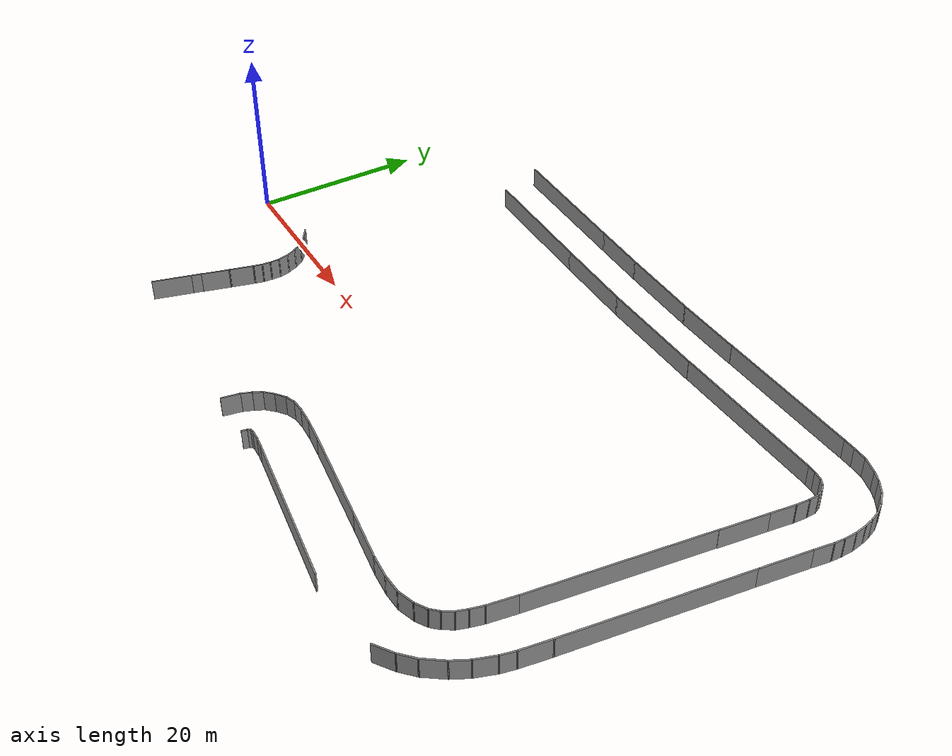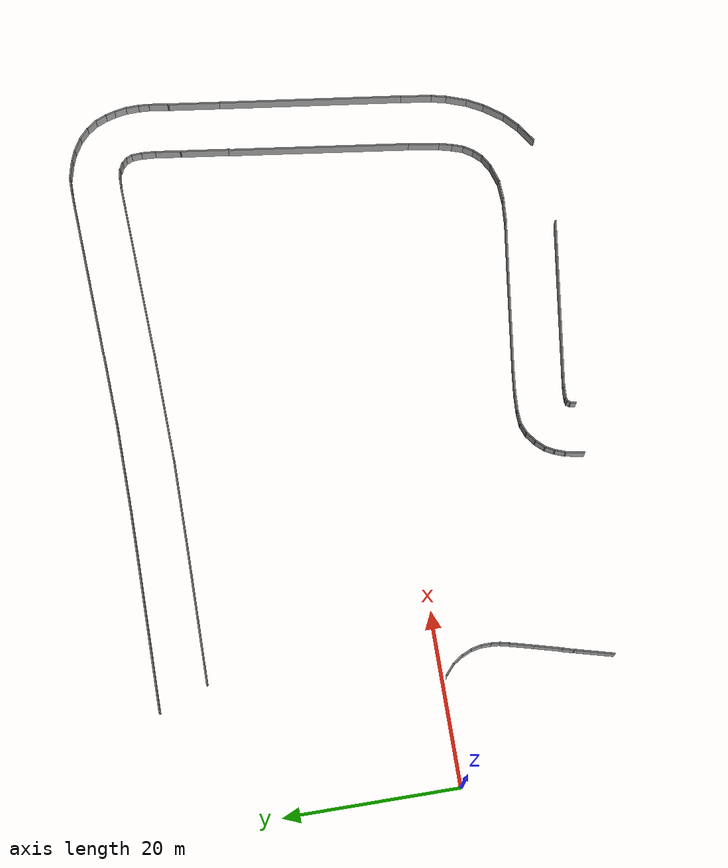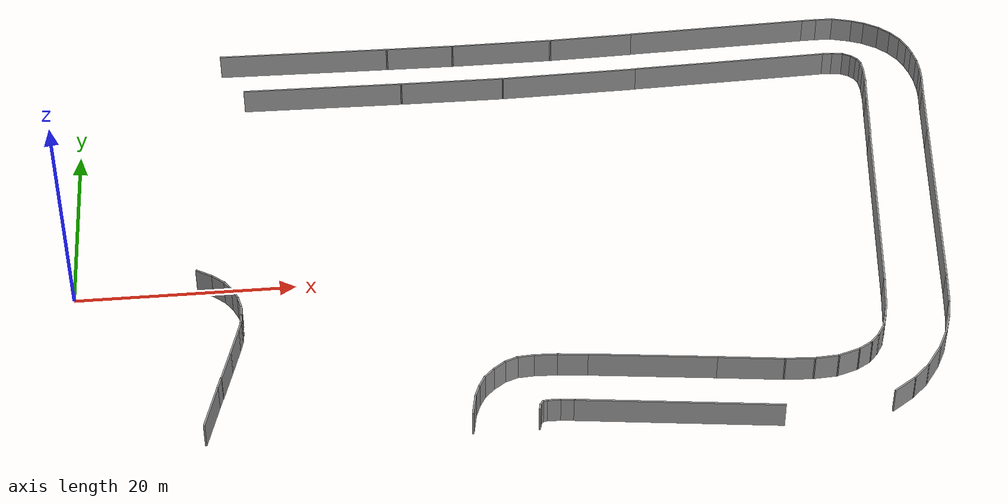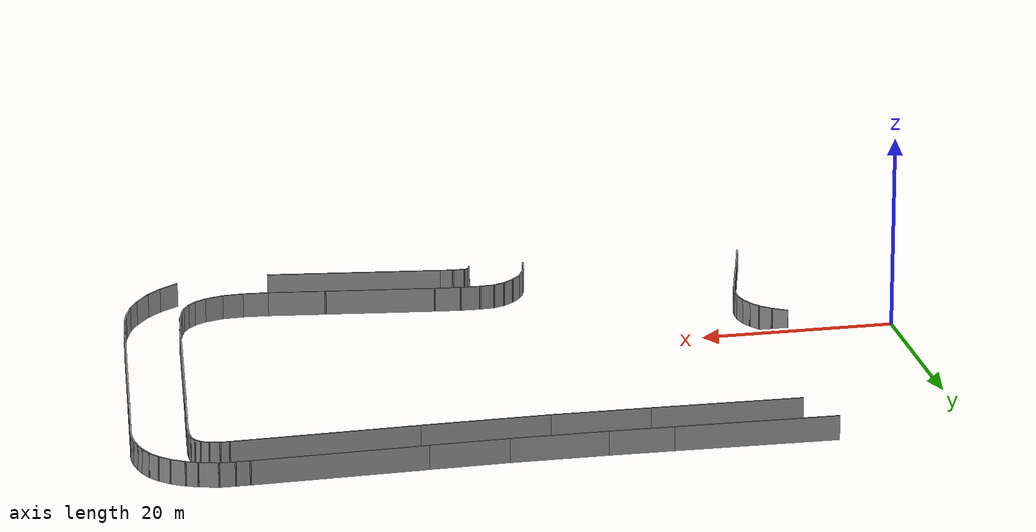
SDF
<sdf version="1.6">
 <model name="pista_l">
  <pose>-4.26084 -21.2973 0 0 -0 0</pose>
  <link name="Wall_10">
   <collision name="Wall_10_Collision">
    <geometry><box><size>17.7168 0.15 2.5</size></box></geometry>
    <pose>0 0 1.25 0 -0 0</pose>
   </collision>
   <visual name="Wall_10_Visual">
    <pose>0 0 1.25 0 -0 0</pose>
    <geometry><box><size>17.7168 0.15 2.5</size></box></geometry>
    <material>
     <script><uri>file://media/materials/scripts/gazebo.material</uri><name>Gazebo/Grey</name></script>
     <ambient>1 1 1 1</ambient>
    </material>
    <meta><layer>0</layer></meta>
   </visual>
   <pose>67.591 53.054 0 0 -0 0.034834</pose>
  </link>
  <link name="Wall_11">
   <collision name="Wall_11_Collision">
    <geometry><box><size>1.58641 0.15 2.5</size></box></geometry>
    <pose>0 0 1.25 0 -0 0</pose>
   </collision>
   <visual name="Wall_11_Visual">
    <pose>0 0 1.25 0 -0 0</pose>
    <geometry><box><size>1.58641 0.15 2.5</size></box></geometry>
    <material>
     <script><uri>file://media/materials/scripts/gazebo.material</uri><name>Gazebo/Grey</name></script>
     <ambient>1 1 1 1</ambient>
    </material>
    <meta><layer>0</layer></meta>
   </visual>
   <pose>77.0873 53.3732 0 0 -0 0.018516</pose>
  </link>
  <link name="Wall_12">
   <collision name="Wall_12_Collision">
    <geometry><box><size>1.77283 0.15 2.5</size></box></geometry>
    <pose>0 0 1.25 0 -0 0</pose>
   </collision>
   <visual name="Wall_12_Visual">
    <pose>0 0 1.25 0 -0 0</pose>
    <geometry><box><size>1.77283 0.15 2.5</size></box></geometry>
    <material>
     <script><uri>file://media/materials/scripts/gazebo.material</uri><name>Gazebo/Grey</name></script>
     <ambient>1 1 1 1</ambient>
    </material>
    <meta><layer>0</layer></meta>
   </visual>
   <pose>78.6168 53.3732 0 0 0 -0.016392</pose>
  </link>
  <link name="Wall_13">
   <collision name="Wall_13_Collision">
    <geometry><box><size>2.13773 0.15 2.5</size></box></geometry>
    <pose>0 0 1.25 0 -0 0</pose>
   </collision>
   <visual name="Wall_13_Visual">
    <pose>0 0 1.25 0 -0 0</pose>
    <geometry><box><size>2.13773 0.15 2.5</size></box></geometry>
    <material>
     <script><uri>file://media/materials/scripts/gazebo.material</uri><name>Gazebo/Grey</name></script>
     <ambient>1 1 1 1</ambient>
    </material>
    <meta><layer>0</layer></meta>
   </visual>
   <pose>80.3857 53.0939 0 0 0 -0.270947</pose>
  </link>
  <link name="Wall_14">
   <collision name="Wall_14_Collision">
    <geometry><box><size>1.38998 0.15 2.5</size></box></geometry>
    <pose>0 0 1.25 0 -0 0</pose>
   </collision>
   <visual name="Wall_14_Visual">
    <pose>0 0 1.25 0 -0 0</pose>
    <geometry><box><size>1.38998 0.15 2.5</size></box></geometry>
    <material>
     <script><uri>file://media/materials/scripts/gazebo.material</uri><name>Gazebo/Grey</name></script>
     <ambient>1 1 1 1</ambient>
    </material>
    <meta><layer>0</layer></meta>
   </visual>
   <pose>81.9152 52.5885 0 0 0 -0.396441</pose>
  </link>
  <link name="Wall_15">
   <collision name="Wall_15_Collision">
    <geometry><box><size>1.72907 0.15 2.5</size></box></geometry>
    <pose>0 0 1.25 0 -0 0</pose>
   </collision>
   <visual name="Wall_15_Visual">
    <pose>0 0 1.25 0 -0 0</pose>
    <geometry><box><size>1.72907 0.15 2.5</size></box></geometry>
    <material>
     <script><uri>file://media/materials/scripts/gazebo.material</uri><name>Gazebo/Grey</name></script>
     <ambient>1 1 1 1</ambient>
    </material>
    <meta><layer>0</layer></meta>
   </visual>
   <pose>83.1521 51.9235 0 0 0 -0.569313</pose>
  </link>
  <link name="Wall_16">
   <collision name="Wall_16_Collision">
    <geometry><box><size>1.54188 0.15 2.5</size></box></geometry>
    <pose>0 0 1.25 0 -0 0</pose>
   </collision>
   <visual name="Wall_16_Visual">
    <pose>0 0 1.25 0 -0 0</pose>
    <geometry><box><size>1.54188 0.15 2.5</size></box></geometry>
    <material>
     <script><uri>file://media/materials/scripts/gazebo.material</uri><name>Gazebo/Grey</name></script>
     <ambient>1 1 1 1</ambient>
    </material>
    <meta><layer>0</layer></meta>
   </visual>
   <pose>84.3092 51.0058 0 0 0 -0.785398</pose>
  </link>
  <link name="Wall_17">
   <collision name="Wall_17_Collision">
    <geometry><box><size>1.47067 0.15 2.5</size></box></geometry>
    <pose>0 0 1.25 0 -0 0</pose>
   </collision>
   <visual name="Wall_17_Visual">
    <pose>0 0 1.25 0 -0 0</pose>
    <geometry><box><size>1.47067 0.15 2.5</size></box></geometry>
    <material>
     <script><uri>file://media/materials/scripts/gazebo.material</uri><name>Gazebo/Grey</name></script>
     <ambient>1 1 1 1</ambient>
    </material>
    <meta><layer>0</layer></meta>
   </visual>
   <pose>85.1737 49.9684 0 0 0 -0.971621</pose>
  </link>
  <link name="Wall_18">
   <collision name="Wall_18_Collision">
    <geometry><box><size>1.46395 0.15 2.5</size></box></geometry>
    <pose>0 0 1.25 0 -0 0</pose>
   </collision>
   <visual name="Wall_18_Visual">
    <pose>0 0 1.25 0 -0 0</pose>
    <geometry><box><size>1.46395 0.15 2.5</size></box></geometry>
    <material>
     <script><uri>file://media/materials/scripts/gazebo.material</uri><name>Gazebo/Grey</name></script>
     <ambient>1 1 1 1</ambient>
    </material>
    <meta><layer>0</layer></meta>
   </visual>
   <pose>85.7856 48.8113 0 0 0 -1.19781</pose>
  </link>
  <link name="Wall_19">
   <collision name="Wall_19_Collision">
    <geometry><box><size>1.22097 0.15 2.5</size></box></geometry>
    <pose>0 0 1.25 0 -0 0</pose>
   </collision>
   <visual name="Wall_19_Visual">
    <pose>0 0 1.25 0 -0 0</pose>
    <geometry><box><size>1.22097 0.15 2.5</size></box></geometry>
    <material>
     <script><uri>file://media/materials/scripts/gazebo.material</uri><name>Gazebo/Grey</name></script>
     <ambient>1 1 1 1</ambient>
    </material>
    <meta><layer>0</layer></meta>
   </visual>
   <pose>86.158 47.6808 0 0 0 -1.31979</pose>
  </link>
  <link name="Wall_20">
   <collision name="Wall_20_Collision">
    <geometry><box><size>1.49693 0.15 2.5</size></box></geometry>
    <pose>0 0 1.25 0 -0 0</pose>
   </collision>
   <visual name="Wall_20_Visual">
    <pose>0 0 1.25 0 -0 0</pose>
    <geometry><box><size>1.49693 0.15 2.5</size></box></geometry>
    <material>
     <script><uri>file://media/materials/scripts/gazebo.material</uri><name>Gazebo/Grey</name></script>
     <ambient>1 1 1 1</ambient>
    </material>
    <meta><layer>0</layer></meta>
   </visual>
   <pose>86.3974 46.497 0 0 0 -1.41214</pose>
  </link>
  <link name="Wall_21">
   <collision name="Wall_21_Collision">
    <geometry><box><size>1.58666 0.15 2.5</size></box></geometry>
    <pose>0 0 1.25 0 -0 0</pose>
   </collision>
   <visual name="Wall_21_Visual">
    <pose>0 0 1.25 0 -0 0</pose>
    <geometry><box><size>1.58666 0.15 2.5</size></box></geometry>
    <material>
     <script><uri>file://media/materials/scripts/gazebo.material</uri><name>Gazebo/Grey</name></script>
     <ambient>1 1 1 1</ambient>
    </material>
    <meta><layer>0</layer></meta>
   </visual>
   <pose>86.5171 45.1138 0 0 0 -1.55228</pose>
  </link>
  <link name="Wall_22">
   <collision name="Wall_22_Collision">
    <geometry><box><size>1.34967 0.15 2.5</size></box></geometry>
    <pose>0 0 1.25 0 -0 0</pose>
   </collision>
   <visual name="Wall_22_Visual">
    <pose>0 0 1.25 0 -0 0</pose>
    <geometry><box><size>1.34967 0.15 2.5</size></box></geometry>
    <material>
     <script><uri>file://media/materials/scripts/gazebo.material</uri><name>Gazebo/Grey</name></script>
     <ambient>1 1 1 1</ambient>
    </material>
    <meta><layer>0</layer></meta>
   </visual>
   <pose>86.4905 43.7971 0 0 0 -1.63736</pose>
  </link>
  <link name="Wall_221">
   <collision name="Wall_221_Collision">
    <geometry><box><size>4.60845 0.15 2.5</size></box></geometry>
    <pose>0 0 1.25 0 -0 0</pose>
   </collision>
   <visual name="Wall_221_Visual">
    <pose>0 0 1.25 0 -0 0</pose>
    <geometry><box><size>4.60845 0.15 2.5</size></box></geometry>
    <material>
     <script><uri>file://media/materials/scripts/gazebo.material</uri><name>Gazebo/Grey</name></script>
     <ambient>1 1 1 1</ambient>
    </material>
    <meta><layer>0</layer></meta>
   </visual>
   <pose>16.5851 4.28253 0 0 -0 1.31135</pose>
  </link>
  <link name="Wall_222">
   <collision name="Wall_222_Collision">
    <geometry><box><size>1.38884 0.15 2.5</size></box></geometry>
    <pose>0 0 1.25 0 -0 0</pose>
   </collision>
   <visual name="Wall_222_Visual">
    <pose>0 0 1.25 0 -0 0</pose>
    <geometry><box><size>1.38884 0.15 2.5</size></box></geometry>
    <material>
     <script><uri>file://media/materials/scripts/gazebo.material</uri><name>Gazebo/Grey</name></script>
     <ambient>1 1 1 1</ambient>
    </material>
    <meta><layer>0</layer></meta>
   </visual>
   <pose>17.3166 7.03565 0 0 -0 1.31019</pose>
  </link>
  <link name="Wall_224">
   <collision name="Wall_224_Collision">
    <geometry><box><size>3.31822 0.15 2.5</size></box></geometry>
    <pose>0 0 1.25 0 -0 0</pose>
   </collision>
   <visual name="Wall_224_Visual">
    <pose>0 0 1.25 0 -0 0</pose>
    <geometry><box><size>3.31822 0.15 2.5</size></box></geometry>
    <material>
     <script><uri>file://media/materials/scripts/gazebo.material</uri><name>Gazebo/Grey</name></script>
     <ambient>1 1 1 1</ambient>
    </material>
    <meta><layer>0</layer></meta>
   </visual>
   <pose>17.9151 9.13707 0 0 -0 1.30749</pose>
  </link>
  <link name="Wall_225">
   <collision name="Wall_225_Collision">
    <geometry><box><size>2.95667 0.15 2.5</size></box></geometry>
    <pose>0 0 1.25 0 -0 0</pose>
   </collision>
   <visual name="Wall_225_Visual">
    <pose>0 0 1.25 0 -0 0</pose>
    <geometry><box><size>2.95667 0.15 2.5</size></box></geometry>
    <material>
     <script><uri>file://media/materials/scripts/gazebo.material</uri><name>Gazebo/Grey</name></script>
     <ambient>1 1 1 1</ambient>
    </material>
    <meta><layer>0</layer></meta>
   </visual>
   <pose>18.6866 12.0232 0 0 -0 1.31202</pose>
  </link>
  <link name="Wall_226">
   <collision name="Wall_226_Collision">
    <geometry><box><size>1.18877 0.15 2.5</size></box></geometry>
    <pose>0 0 1.25 0 -0 0</pose>
   </collision>
   <visual name="Wall_226_Visual">
    <pose>0 0 1.25 0 -0 0</pose>
    <geometry><box><size>1.18877 0.15 2.5</size></box></geometry>
    <material>
     <script><uri>file://media/materials/scripts/gazebo.material</uri><name>Gazebo/Grey</name></script>
     <ambient>1 1 1 1</ambient>
    </material>
    <meta><layer>0</layer></meta>
   </visual>
   <pose>19.1654 13.8852 0 0 -0 1.33824</pose>
  </link>
  <link name="Wall_227">
   <collision name="Wall_227_Collision">
    <geometry><box><size>1.13744 0.15 2.5</size></box></geometry>
    <pose>0 0 1.25 0 -0 0</pose>
   </collision>
   <visual name="Wall_227_Visual">
    <pose>0 0 1.25 0 -0 0</pose>
    <geometry><box><size>1.13744 0.15 2.5</size></box></geometry>
    <material>
     <script><uri>file://media/materials/scripts/gazebo.material</uri><name>Gazebo/Grey</name></script>
     <ambient>1 1 1 1</ambient>
    </material>
    <meta><layer>0</layer></meta>
   </visual>
   <pose>19.325 14.8827 0 0 -0 1.48989</pose>
  </link>
  <link name="Wall_228">
   <collision name="Wall_228_Collision">
    <geometry><box><size>1.24093 0.15 2.5</size></box></geometry>
    <pose>0 0 1.25 0 -0 0</pose>
   </collision>
   <visual name="Wall_228_Visual">
    <pose>0 0 1.25 0 -0 0</pose>
    <geometry><box><size>1.24093 0.15 2.5</size></box></geometry>
    <material>
     <script><uri>file://media/materials/scripts/gazebo.material</uri><name>Gazebo/Grey</name></script>
     <ambient>1 1 1 1</ambient>
    </material>
    <meta><layer>0</layer></meta>
   </visual>
   <pose>19.3649 15.9201 0 0 -0 1.5708</pose>
  </link>
  <link name="Wall_229">
   <collision name="Wall_229_Collision">
    <geometry><box><size>1.37621 0.15 2.5</size></box></geometry>
    <pose>0 0 1.25 0 -0 0</pose>
   </collision>
   <visual name="Wall_229_Visual">
    <pose>0 0 1.25 0 -0 0</pose>
    <geometry><box><size>1.37621 0.15 2.5</size></box></geometry>
    <material>
     <script><uri>file://media/materials/scripts/gazebo.material</uri><name>Gazebo/Grey</name></script>
     <ambient>1 1 1 1</ambient>
    </material>
    <meta><layer>0</layer></meta>
   </visual>
   <pose>19.2319 17.0639 0 0 -0 1.78947</pose>
  </link>
  <link name="Wall_23">
   <collision name="Wall_23_Collision">
    <geometry><box><size>2.35445 0.15 2.5</size></box></geometry>
    <pose>0 0 1.25 0 -0 0</pose>
   </collision>
   <visual name="Wall_23_Visual">
    <pose>0 0 1.25 0 -0 0</pose>
    <geometry><box><size>2.35445 0.15 2.5</size></box></geometry>
    <material>
     <script><uri>file://media/materials/scripts/gazebo.material</uri><name>Gazebo/Grey</name></script>
     <ambient>1 1 1 1</ambient>
    </material>
    <meta><layer>0</layer></meta>
   </visual>
   <pose>86.291 42.108 0 0 0 -1.71611</pose>
  </link>
  <link name="Wall_230">
   <collision name="Wall_230_Collision">
    <geometry><box><size>1.37621 0.15 2.5</size></box></geometry>
    <pose>0 0 1.25 0 -0 0</pose>
   </collision>
   <visual name="Wall_230_Visual">
    <pose>0 0 1.25 0 -0 0</pose>
    <geometry><box><size>1.37621 0.15 2.5</size></box></geometry>
    <material>
     <script><uri>file://media/materials/scripts/gazebo.material</uri><name>Gazebo/Grey</name></script>
     <ambient>1 1 1 1</ambient>
    </material>
    <meta><layer>0</layer></meta>
   </visual>
   <pose>18.8462 18.221 0 0 -0 1.99563</pose>
  </link>
  <link name="Wall_231">
   <collision name="Wall_231_Collision">
    <geometry><box><size>1.39681 0.15 2.5</size></box></geometry>
    <pose>0 0 1.25 0 -0 0</pose>
   </collision>
   <visual name="Wall_231_Visual">
    <pose>0 0 1.25 0 -0 0</pose>
    <geometry><box><size>1.39681 0.15 2.5</size></box></geometry>
    <material>
     <script><uri>file://media/materials/scripts/gazebo.material</uri><name>Gazebo/Grey</name></script>
     <ambient>1 1 1 1</ambient>
    </material>
    <meta><layer>0</layer></meta>
   </visual>
   <pose>18.2476 19.2983 0 0 -0 2.1588</pose>
  </link>
  <link name="Wall_232">
   <collision name="Wall_232_Collision">
    <geometry><box><size>1.60136 0.15 2.5</size></box></geometry>
    <pose>0 0 1.25 0 -0 0</pose>
   </collision>
   <visual name="Wall_232_Visual">
    <pose>0 0 1.25 0 -0 0</pose>
    <geometry><box><size>1.60136 0.15 2.5</size></box></geometry>
    <material>
     <script><uri>file://media/materials/scripts/gazebo.material</uri><name>Gazebo/Grey</name></script>
     <ambient>1 1 1 1</ambient>
    </material>
    <meta><layer>0</layer></meta>
   </visual>
   <pose>17.3565 20.2959 0 0 -0 2.42104</pose>
  </link>
  <link name="Wall_233">
   <collision name="Wall_233_Collision">
    <geometry><box><size>1.78824 0.15 2.5</size></box></geometry>
    <pose>0 0 1.25 0 -0 0</pose>
   </collision>
   <visual name="Wall_233_Visual">
    <pose>0 0 1.25 0 -0 0</pose>
    <geometry><box><size>1.78824 0.15 2.5</size></box></geometry>
    <material>
     <script><uri>file://media/materials/scripts/gazebo.material</uri><name>Gazebo/Grey</name></script>
     <ambient>1 1 1 1</ambient>
    </material>
    <meta><layer>0</layer></meta>
   </visual>
   <pose>16.1196 21.2136 0 0 -0 2.57611</pose>
  </link>
  <link name="Wall_24">
   <collision name="Wall_24_Collision">
    <geometry><box><size>6.05267 0.15 2.5</size></box></geometry>
    <pose>0 0 1.25 0 -0 0</pose>
   </collision>
   <visual name="Wall_24_Visual">
    <pose>0 0 1.25 0 -0 0</pose>
    <geometry><box><size>6.05267 0.15 2.5</size></box></geometry>
    <material>
     <script><uri>file://media/materials/scripts/gazebo.material</uri><name>Gazebo/Grey</name></script>
     <ambient>1 1 1 1</ambient>
    </material>
    <meta><layer>0</layer></meta>
   </visual>
   <pose>85.7457 38.0914 0 0 0 -1.70186</pose>
  </link>
  <link name="Wall_26">
   <collision name="Wall_26_Collision">
    <geometry><box><size>19.0478 0.15 2.5</size></box></geometry>
    <pose>0 0 1.25 0 -0 0</pose>
   </collision>
   <visual name="Wall_26_Visual">
    <pose>0 0 1.25 0 -0 0</pose>
    <geometry><box><size>19.0478 0.15 2.5</size></box></geometry>
    <material>
     <script><uri>file://media/materials/scripts/gazebo.material</uri><name>Gazebo/Grey</name></script>
     <ambient>1 1 1 1</ambient>
    </material>
    <meta><layer>0</layer></meta>
   </visual>
   <pose>68.0166 47.468 0 0 -0 0.035197</pose>
  </link>
  <link name="Wall_27">
   <collision name="Wall_27_Collision">
    <geometry><box><size>1.08139 0.15 2.5</size></box></geometry>
    <pose>0 0 1.25 0 -0 0</pose>
   </collision>
   <visual name="Wall_27_Visual">
    <pose>0 0 1.25 0 -0 0</pose>
    <geometry><box><size>1.08139 0.15 2.5</size></box></geometry>
    <material>
     <script><uri>file://media/materials/scripts/gazebo.material</uri><name>Gazebo/Grey</name></script>
     <ambient>1 1 1 1</ambient>
    </material>
    <meta><layer>0</layer></meta>
   </visual>
   <pose>77.9252 47.7872 0 0 0 -0.028564</pose>
  </link>
  <link name="Wall_28">
   <collision name="Wall_28_Collision">
    <geometry><box><size>1.19961 0.15 2.5</size></box></geometry>
    <pose>0 0 1.25 0 -0 0</pose>
   </collision>
   <visual name="Wall_28_Visual">
    <pose>0 0 1.25 0 -0 0</pose>
    <geometry><box><size>1.19961 0.15 2.5</size></box></geometry>
    <material>
     <script><uri>file://media/materials/scripts/gazebo.material</uri><name>Gazebo/Grey</name></script>
     <ambient>1 1 1 1</ambient>
    </material>
    <meta><layer>0</layer></meta>
   </visual>
   <pose>78.9094 47.6941 0 0 0 -0.152649</pose>
  </link>
  <link name="Wall_29">
   <collision name="Wall_29_Collision">
    <geometry><box><size>0.994949 0.15 2.5</size></box></geometry>
    <pose>0 0 1.25 0 -0 0</pose>
   </collision>
   <visual name="Wall_29_Visual">
    <pose>0 0 1.25 0 -0 0</pose>
    <geometry><box><size>0.994949 0.15 2.5</size></box></geometry>
    <material>
     <script><uri>file://media/materials/scripts/gazebo.material</uri><name>Gazebo/Grey</name></script>
     <ambient>1 1 1 1</ambient>
    </material>
    <meta><layer>0</layer></meta>
   </visual>
   <pose>79.8005 47.4148 0 0 0 -0.491809</pose>
  </link>
  <link name="Wall_30">
   <collision name="Wall_30_Collision">
    <geometry><box><size>0.828175 0.15 2.5</size></box></geometry>
    <pose>0 0 1.25 0 -0 0</pose>
   </collision>
   <visual name="Wall_30_Visual">
    <pose>0 0 1.25 0 -0 0</pose>
    <geometry><box><size>0.828175 0.15 2.5</size></box></geometry>
    <material>
     <script><uri>file://media/materials/scripts/gazebo.material</uri><name>Gazebo/Grey</name></script>
     <ambient>1 1 1 1</ambient>
    </material>
    <meta><layer>0</layer></meta>
   </visual>
   <pose>80.399 46.9626 0 0 0 -0.840897</pose>
  </link>
  <link name="Wall_31">
   <collision name="Wall_31_Collision">
    <geometry><box><size>0.876531 0.15 2.5</size></box></geometry>
    <pose>0 0 1.25 0 -0 0</pose>
   </collision>
   <visual name="Wall_31_Visual">
    <pose>0 0 1.25 0 -0 0</pose>
    <geometry><box><size>0.876531 0.15 2.5</size></box></geometry>
    <material>
     <script><uri>file://media/materials/scripts/gazebo.material</uri><name>Gazebo/Grey</name></script>
     <ambient>1 1 1 1</ambient>
    </material>
    <meta><layer>0</layer></meta>
   </visual>
   <pose>80.7714 46.3773 0 0 0 -1.15629</pose>
  </link>
  <link name="Wall_32">
   <collision name="Wall_32_Collision">
    <geometry><box><size>1.29412 0.15 2.5</size></box></geometry>
    <pose>0 0 1.25 0 -0 0</pose>
   </collision>
   <visual name="Wall_32_Visual">
    <pose>0 0 1.25 0 -0 0</pose>
    <geometry><box><size>1.29412 0.15 2.5</size></box></geometry>
    <material>
     <script><uri>file://media/materials/scripts/gazebo.material</uri><name>Gazebo/Grey</name></script>
     <ambient>1 1 1 1</ambient>
    </material>
    <meta><layer>0</layer></meta>
   </visual>
   <pose>80.9443 45.4729 0 0 0 -1.52432</pose>
  </link>
  <link name="Wall_33">
   <collision name="Wall_33_Collision">
    <geometry><box><size>1.72301 0.15 2.5</size></box></geometry>
    <pose>0 0 1.25 0 -0 0</pose>
   </collision>
   <visual name="Wall_33_Visual">
    <pose>0 0 1.25 0 -0 0</pose>
    <geometry><box><size>1.72301 0.15 2.5</size></box></geometry>
    <material>
     <script><uri>file://media/materials/scripts/gazebo.material</uri><name>Gazebo/Grey</name></script>
     <ambient>1 1 1 1</ambient>
    </material>
    <meta><layer>0</layer></meta>
   </visual>
   <pose>80.9177 44.1163 0 0 0 -1.63849</pose>
  </link>
  <link name="Wall_34">
   <collision name="Wall_34_Collision">
    <geometry><box><size>3.02405 0.15 2.5</size></box></geometry>
    <pose>0 0 1.25 0 -0 0</pose>
   </collision>
   <visual name="Wall_34_Visual">
    <pose>0 0 1.25 0 -0 0</pose>
    <geometry><box><size>3.02405 0.15 2.5</size></box></geometry>
    <material>
     <script><uri>file://media/materials/scripts/gazebo.material</uri><name>Gazebo/Grey</name></script>
     <ambient>1 1 1 1</ambient>
    </material>
    <meta><layer>0</layer></meta>
   </visual>
   <pose>80.665 41.9085 0 0 0 -1.71008</pose>
  </link>
  <link name="Wall_35">
   <collision name="Wall_35_Collision">
    <geometry><box><size>5.67651 0.15 2.5</size></box></geometry>
    <pose>0 0 1.25 0 -0 0</pose>
   </collision>
   <visual name="Wall_35_Visual">
    <pose>0 0 1.25 0 -0 0</pose>
    <geometry><box><size>5.67651 0.15 2.5</size></box></geometry>
    <material>
     <script><uri>file://media/materials/scripts/gazebo.material</uri><name>Gazebo/Grey</name></script>
     <ambient>1 1 1 1</ambient>
    </material>
    <meta><layer>0</layer></meta>
   </visual>
   <pose>80.1064 37.7456 0 0 0 -1.70112</pose>
  </link>
  <link name="Wall_353">
   <collision name="Wall_353_Collision">
    <geometry><box><size>13.2406 0.15 2.5</size></box></geometry>
    <pose>0 0 1.25 0 -0 0</pose>
   </collision>
   <visual name="Wall_353_Visual">
    <pose>0 0 1.25 0 -0 0</pose>
    <geometry><box><size>13.2406 0.15 2.5</size></box></geometry>
    <material>
     <script><uri>file://media/materials/scripts/gazebo.material</uri><name>Gazebo/Grey</name></script>
     <ambient>1 1 1 1</ambient>
    </material>
    <meta><layer>0</layer></meta>
   </visual>
   <pose>52.0033 46.9626 0 0 0 -3.11924</pose>
  </link>
  <link name="Wall_354">
   <collision name="Wall_354_Collision">
    <geometry><box><size>10.152 0.15 2.5</size></box></geometry>
    <pose>0 0 1.25 0 -0 0</pose>
   </collision>
   <visual name="Wall_354_Visual">
    <pose>0 0 1.25 0 -0 0</pose>
    <geometry><box><size>10.152 0.15 2.5</size></box></geometry>
    <material>
     <script><uri>file://media/materials/scripts/gazebo.material</uri><name>Gazebo/Grey</name></script>
     <ambient>1 1 1 1</ambient>
    </material>
    <meta><layer>0</layer></meta>
   </visual>
   <pose>40.4588 46.8562 0 0 -0 3.13361</pose>
  </link>
  <link name="Wall_355">
   <collision name="Wall_355_Collision">
    <geometry><box><size>15.447 0.15 2.5</size></box></geometry>
    <pose>0 0 1.25 0 -0 0</pose>
   </collision>
   <visual name="Wall_355_Visual">
    <pose>0 0 1.25 0 -0 0</pose>
    <geometry><box><size>15.447 0.15 2.5</size></box></geometry>
    <material>
     <script><uri>file://media/materials/scripts/gazebo.material</uri><name>Gazebo/Grey</name></script>
     <ambient>1 1 1 1</ambient>
    </material>
    <meta><layer>0</layer></meta>
   </visual>
   <pose>27.8104 47.0158 0 0 -0 3.12594</pose>
  </link>
  <link name="Wall_37">
   <collision name="Wall_37_Collision">
    <geometry><box><size>20.623 0.15 2.5</size></box></geometry>
    <pose>0 0 1.25 0 -0 0</pose>
   </collision>
   <visual name="Wall_37_Visual">
    <pose>0 0 1.25 0 -0 0</pose>
    <geometry><box><size>20.623 0.15 2.5</size></box></geometry>
    <material>
     <script><uri>file://media/materials/scripts/gazebo.material</uri><name>Gazebo/Grey</name></script>
     <ambient>1 1 1 1</ambient>
    </material>
    <meta><layer>0</layer></meta>
   </visual>
   <pose>78.3774 24.8844 0 0 0 -1.7024</pose>
  </link>
  <link name="Wall_39">
   <collision name="Wall_39_Collision">
    <geometry><box><size>20.725 0.15 2.5</size></box></geometry>
    <pose>0 0 1.25 0 -0 0</pose>
   </collision>
   <visual name="Wall_39_Visual">
    <pose>0 0 1.25 0 -0 0</pose>
    <geometry><box><size>20.725 0.15 2.5</size></box></geometry>
    <material>
     <script><uri>file://media/materials/scripts/gazebo.material</uri><name>Gazebo/Grey</name></script>
     <ambient>1 1 1 1</ambient>
    </material>
    <meta><layer>0</layer></meta>
   </visual>
   <pose>84.0299 24.9642 0 0 0 -1.70044</pose>
  </link>
  <link name="Wall_41">
   <collision name="Wall_41_Collision">
    <geometry><box><size>3.54359 0.15 2.5</size></box></geometry>
    <pose>0 0 1.25 0 -0 0</pose>
   </collision>
   <visual name="Wall_41_Visual">
    <pose>0 0 1.25 0 -0 0</pose>
    <geometry><box><size>3.54359 0.15 2.5</size></box></geometry>
    <material>
     <script><uri>file://media/materials/scripts/gazebo.material</uri><name>Gazebo/Grey</name></script>
     <ambient>1 1 1 1</ambient>
    </material>
    <meta><layer>0</layer></meta>
   </visual>
   <pose>76.7681 13.0872 0 0 0 -1.72821</pose>
  </link>
  <link name="Wall_42">
   <collision name="Wall_42_Collision">
    <geometry><box><size>1.6339 0.15 2.5</size></box></geometry>
    <pose>0 0 1.25 0 -0 0</pose>
   </collision>
   <visual name="Wall_42_Visual">
    <pose>0 0 1.25 0 -0 0</pose>
    <geometry><box><size>1.6339 0.15 2.5</size></box></geometry>
    <material>
     <script><uri>file://media/materials/scripts/gazebo.material</uri><name>Gazebo/Grey</name></script>
     <ambient>1 1 1 1</ambient>
    </material>
    <meta><layer>0</layer></meta>
   </visual>
   <pose>76.3159 10.6932 0 0 0 -1.82447</pose>
  </link>
  <link name="Wall_43">
   <collision name="Wall_43_Collision">
    <geometry><box><size>1.41176 0.15 2.5</size></box></geometry>
    <pose>0 0 1.25 0 -0 0</pose>
   </collision>
   <visual name="Wall_43_Visual">
    <pose>0 0 1.25 0 -0 0</pose>
    <geometry><box><size>1.41176 0.15 2.5</size></box></geometry>
    <material>
     <script><uri>file://media/materials/scripts/gazebo.material</uri><name>Gazebo/Grey</name></script>
     <ambient>1 1 1 1</ambient>
    </material>
    <meta><layer>0</layer></meta>
   </visual>
   <pose>75.9302 9.37647 0 0 0 -1.89255</pose>
  </link>
  <link name="Wall_44">
   <collision name="Wall_44_Collision">
    <geometry><box><size>1.40473 0.15 2.5</size></box></geometry>
    <pose>0 0 1.25 0 -0 0</pose>
   </collision>
   <visual name="Wall_44_Visual">
    <pose>0 0 1.25 0 -0 0</pose>
    <geometry><box><size>1.40473 0.15 2.5</size></box></geometry>
    <material>
     <script><uri>file://media/materials/scripts/gazebo.material</uri><name>Gazebo/Grey</name></script>
     <ambient>1 1 1 1</ambient>
    </material>
    <meta><layer>0</layer></meta>
   </visual>
   <pose>75.3982 8.24596 0 0 0 -2.1294</pose>
  </link>
  <link name="Wall_45">
   <collision name="Wall_45_Collision">
    <geometry><box><size>1.29875 0.15 2.5</size></box></geometry>
    <pose>0 0 1.25 0 -0 0</pose>
   </collision>
   <visual name="Wall_45_Visual">
    <pose>0 0 1.25 0 -0 0</pose>
    <geometry><box><size>1.29875 0.15 2.5</size></box></geometry>
    <material>
     <script><uri>file://media/materials/scripts/gazebo.material</uri><name>Gazebo/Grey</name></script>
     <ambient>1 1 1 1</ambient>
    </material>
    <meta><layer>0</layer></meta>
   </visual>
   <pose>74.68 7.28836 0 0 0 -2.30705</pose>
  </link>
  <link name="Wall_46">
   <collision name="Wall_46_Collision">
    <geometry><box><size>1.61904 0.15 2.5</size></box></geometry>
    <pose>0 0 1.25 0 -0 0</pose>
   </collision>
   <visual name="Wall_46_Visual">
    <pose>0 0 1.25 0 -0 0</pose>
    <geometry><box><size>1.61904 0.15 2.5</size></box></geometry>
    <material>
     <script><uri>file://media/materials/scripts/gazebo.material</uri><name>Gazebo/Grey</name></script>
     <ambient>1 1 1 1</ambient>
    </material>
    <meta><layer>0</layer></meta>
   </visual>
   <pose>73.6692 6.47705 0 0 0 -2.58875</pose>
  </link>
  <link name="Wall_47">
   <collision name="Wall_47_Collision">
    <geometry><box><size>2.16881 0.15 2.5</size></box></geometry>
    <pose>0 0 1.25 0 -0 0</pose>
   </collision>
   <visual name="Wall_47_Visual">
    <pose>0 0 1.25 0 -0 0</pose>
    <geometry><box><size>2.16881 0.15 2.5</size></box></geometry>
    <material>
     <script><uri>file://media/materials/scripts/gazebo.material</uri><name>Gazebo/Grey</name></script>
     <ambient>1 1 1 1</ambient>
    </material>
    <meta><layer>0</layer></meta>
   </visual>
   <pose>72.0864 5.77214 0 0 0 -2.81984</pose>
  </link>
  <link name="Wall_48">
   <collision name="Wall_48_Collision">
    <geometry><box><size>2.28217 0.15 2.5</size></box></geometry>
    <pose>0 0 1.25 0 -0 0</pose>
   </collision>
   <visual name="Wall_48_Visual">
    <pose>0 0 1.25 0 -0 0</pose>
    <geometry><box><size>2.28217 0.15 2.5</size></box></geometry>
    <material>
     <script><uri>file://media/materials/scripts/gazebo.material</uri><name>Gazebo/Grey</name></script>
     <ambient>1 1 1 1</ambient>
    </material>
    <meta><layer>0</layer></meta>
   </visual>
   <pose>70.0648 5.38644 0 0 0 -3.07917</pose>
  </link>
  <link name="Wall_49">
   <collision name="Wall_49_Collision">
    <geometry><box><size>2.7617 0.15 2.5</size></box></geometry>
    <pose>0 0 1.25 0 -0 0</pose>
   </collision>
   <visual name="Wall_49_Visual">
    <pose>0 0 1.25 0 -0 0</pose>
    <geometry><box><size>2.7617 0.15 2.5</size></box></geometry>
    <material>
     <script><uri>file://media/materials/scripts/gazebo.material</uri><name>Gazebo/Grey</name></script>
     <ambient>1 1 1 1</ambient>
    </material>
    <meta><layer>0</layer></meta>
   </visual>
   <pose>67.6974 5.39974 0 0 -0 3.08044</pose>
  </link>
  <link name="Wall_5">
   <collision name="Wall_5_Collision">
    <geometry><box><size>16.5907 0.15 2.5</size></box></geometry>
    <pose>0 0 1.25 0 -0 0</pose>
   </collision>
   <visual name="Wall_5_Visual">
    <pose>0 0 1.25 0 -0 0</pose>
    <geometry><box><size>16.5907 0.15 2.5</size></box></geometry>
    <material>
     <script><uri>file://media/materials/scripts/gazebo.material</uri><name>Gazebo/Grey</name></script>
     <ambient>1 1 1 1</ambient>
    </material>
    <meta><layer>0</layer></meta>
   </visual>
   <pose>26.1479 52.6683 0 0 0 -0.01618</pose>
  </link>
  <link name="Wall_50">
   <collision name="Wall_50_Collision">
    <geometry><box><size>6.02286 0.15 2.5</size></box></geometry>
    <pose>0 0 1.25 0 -0 0</pose>
   </collision>
   <visual name="Wall_50_Visual">
    <pose>0 0 1.25 0 -0 0</pose>
    <geometry><box><size>6.02286 0.15 2.5</size></box></geometry>
    <material>
     <script><uri>file://media/materials/scripts/gazebo.material</uri><name>Gazebo/Grey</name></script>
     <ambient>1 1 1 1</ambient>
    </material>
    <meta><layer>0</layer></meta>
   </visual>
   <pose>63.4813 5.85194 0 0 -0 3.01443</pose>
  </link>
  <link name="Wall_51">
   <collision name="Wall_51_Collision">
    <geometry><box><size>11.4338 0.15 2.5</size></box></geometry>
    <pose>0 0 1.25 0 -0 0</pose>
   </collision>
   <visual name="Wall_51_Visual">
    <pose>0 0 1.25 0 -0 0</pose>
    <geometry><box><size>11.4338 0.15 2.5</size></box></geometry>
    <material>
     <script><uri>file://media/materials/scripts/gazebo.material</uri><name>Gazebo/Grey</name></script>
     <ambient>1 1 1 1</ambient>
    </material>
    <meta><layer>0</layer></meta>
   </visual>
   <pose>54.9692 6.91595 0 0 -0 3.0187</pose>
  </link>
  <link name="Wall_52">
   <collision name="Wall_52_Collision">
    <geometry><box><size>2.82329 0.15 2.5</size></box></geometry>
    <pose>0 0 1.25 0 -0 0</pose>
   </collision>
   <visual name="Wall_52_Visual">
    <pose>0 0 1.25 0 -0 0</pose>
    <geometry><box><size>2.82329 0.15 2.5</size></box></geometry>
    <material>
     <script><uri>file://media/materials/scripts/gazebo.material</uri><name>Gazebo/Grey</name></script>
     <ambient>1 1 1 1</ambient>
    </material>
    <meta><layer>0</layer></meta>
   </visual>
   <pose>48.0399 7.74056 0 0 -0 3.04192</pose>
  </link>
  <link name="Wall_53">
   <collision name="Wall_53_Collision">
    <geometry><box><size>2.19977 0.15 2.5</size></box></geometry>
    <pose>0 0 1.25 0 -0 0</pose>
   </collision>
   <visual name="Wall_53_Visual">
    <pose>0 0 1.25 0 -0 0</pose>
    <geometry><box><size>2.19977 0.15 2.5</size></box></geometry>
    <material>
     <script><uri>file://media/materials/scripts/gazebo.material</uri><name>Gazebo/Grey</name></script>
     <ambient>1 1 1 1</ambient>
    </material>
    <meta><layer>0</layer></meta>
   </visual>
   <pose>45.6858 7.91346 0 0 -0 3.10265</pose>
  </link>
  <link name="Wall_55">
   <collision name="Wall_55_Collision">
    <geometry><box><size>3.61845 0.15 2.5</size></box></geometry>
    <pose>0 0 1.25 0 -0 0</pose>
   </collision>
   <visual name="Wall_55_Visual">
    <pose>0 0 1.25 0 -0 0</pose>
    <geometry><box><size>3.61845 0.15 2.5</size></box></geometry>
    <material>
     <script><uri>file://media/materials/scripts/gazebo.material</uri><name>Gazebo/Grey</name></script>
     <ambient>1 1 1 1</ambient>
    </material>
    <meta><layer>0</layer></meta>
   </visual>
   <pose>82.4472 13.0473 0 0 0 -1.71703</pose>
  </link>
  <link name="Wall_56">
   <collision name="Wall_56_Collision">
    <geometry><box><size>1.8148 0.15 2.5</size></box></geometry>
    <pose>0 0 1.25 0 -0 0</pose>
   </collision>
   <visual name="Wall_56_Visual">
    <pose>0 0 1.25 0 -0 0</pose>
    <geometry><box><size>1.8148 0.15 2.5</size></box></geometry>
    <material>
     <script><uri>file://media/materials/scripts/gazebo.material</uri><name>Gazebo/Grey</name></script>
     <ambient>1 1 1 1</ambient>
    </material>
    <meta><layer>0</layer></meta>
   </visual>
   <pose>82.0083 10.5203 0 0 0 -1.7964</pose>
  </link>
  <link name="Wall_57">
   <collision name="Wall_57_Collision">
    <geometry><box><size>2.51383 0.15 2.5</size></box></geometry>
    <pose>0 0 1.25 0 -0 0</pose>
   </collision>
   <visual name="Wall_57_Visual">
    <pose>0 0 1.25 0 -0 0</pose>
    <geometry><box><size>2.51383 0.15 2.5</size></box></geometry>
    <material>
     <script><uri>file://media/materials/scripts/gazebo.material</uri><name>Gazebo/Grey</name></script>
     <ambient>1 1 1 1</ambient>
    </material>
    <meta><layer>0</layer></meta>
   </visual>
   <pose>81.4364 8.59177 0 0 0 -1.90322</pose>
  </link>
  <link name="Wall_58">
   <collision name="Wall_58_Collision">
    <geometry><box><size>2.18435 0.15 2.5</size></box></geometry>
    <pose>0 0 1.25 0 -0 0</pose>
   </collision>
   <visual name="Wall_58_Visual">
    <pose>0 0 1.25 0 -0 0</pose>
    <geometry><box><size>2.18435 0.15 2.5</size></box></geometry>
    <material>
     <script><uri>file://media/materials/scripts/gazebo.material</uri><name>Gazebo/Grey</name></script>
     <ambient>1 1 1 1</ambient>
    </material>
    <meta><layer>0</layer></meta>
   </visual>
   <pose>80.5852 6.57015 0 0 0 -2.04614</pose>
  </link>
  <link name="Wall_59">
   <collision name="Wall_59_Collision">
    <geometry><box><size>2.72583 0.15 2.5</size></box></geometry>
    <pose>0 0 1.25 0 -0 0</pose>
   </collision>
   <visual name="Wall_59_Visual">
    <pose>0 0 1.25 0 -0 0</pose>
    <geometry><box><size>2.72583 0.15 2.5</size></box></geometry>
    <material>
     <script><uri>file://media/materials/scripts/gazebo.material</uri><name>Gazebo/Grey</name></script>
     <ambient>1 1 1 1</ambient>
    </material>
    <meta><layer>0</layer></meta>
   </visual>
   <pose>79.3749 4.61504 0 0 0 -2.18744</pose>
  </link>
  <link name="Wall_6">
   <collision name="Wall_6_Collision">
    <geometry><box><size>6.69414 0.15 2.5</size></box></geometry>
    <pose>0 0 1.25 0 -0 0</pose>
   </collision>
   <visual name="Wall_6_Visual">
    <pose>0 0 1.25 0 -0 0</pose>
    <geometry><box><size>6.69414 0.15 2.5</size></box></geometry>
    <material>
     <script><uri>file://media/materials/scripts/gazebo.material</uri><name>Gazebo/Grey</name></script>
     <ambient>1 1 1 1</ambient>
    </material>
    <meta><layer>0</layer></meta>
   </visual>
   <pose>37.6392 52.4954 0 0 0 -0.012195</pose>
  </link>
  <link name="Wall_60">
   <collision name="Wall_60_Collision">
    <geometry><box><size>2.18174 0.15 2.5</size></box></geometry>
    <pose>0 0 1.25 0 -0 0</pose>
   </collision>
   <visual name="Wall_60_Visual">
    <pose>0 0 1.25 0 -0 0</pose>
    <geometry><box><size>2.18174 0.15 2.5</size></box></geometry>
    <material>
     <script><uri>file://media/materials/scripts/gazebo.material</uri><name>Gazebo/Grey</name></script>
     <ambient>1 1 1 1</ambient>
    </material>
    <meta><layer>0</layer></meta>
   </visual>
   <pose>77.8986 2.85942 0 0 0 -2.37471</pose>
  </link>
  <link name="Wall_61">
   <collision name="Wall_61_Collision">
    <geometry><box><size>2.55581 0.15 2.5</size></box></geometry>
    <pose>0 0 1.25 0 -0 0</pose>
   </collision>
   <visual name="Wall_61_Visual">
    <pose>0 0 1.25 0 -0 0</pose>
    <geometry><box><size>2.55581 0.15 2.5</size></box></geometry>
    <material>
     <script><uri>file://media/materials/scripts/gazebo.material</uri><name>Gazebo/Grey</name></script>
     <ambient>1 1 1 1</ambient>
    </material>
    <meta><layer>0</layer></meta>
   </visual>
   <pose>76.1829 1.46291 0 0 0 -2.52906</pose>
  </link>
  <link name="Wall_66">
   <collision name="Wall_66_Collision">
    <geometry><box><size>18.1414 0.15 2.5</size></box></geometry>
    <pose>0 0 1.25 0 -0 0</pose>
   </collision>
   <visual name="Wall_66_Visual">
    <pose>0 0 1.25 0 -0 0</pose>
    <geometry><box><size>18.1414 0.15 2.5</size></box></geometry>
    <material>
     <script><uri>file://media/materials/scripts/gazebo.material</uri><name>Gazebo/Grey</name></script>
     <ambient>1 1 1 1</ambient>
    </material>
    <meta><layer>0</layer></meta>
   </visual>
   <pose>56.5386 1.07721 0 0 -0 3.01559</pose>
  </link>
  <link name="Wall_68">
   <collision name="Wall_68_Collision">
    <geometry><box><size>1.64341 0.15 2.5</size></box></geometry>
    <pose>0 0 1.25 0 -0 0</pose>
   </collision>
   <visual name="Wall_68_Visual">
    <pose>0 0 1.25 0 -0 0</pose>
    <geometry><box><size>1.64341 0.15 2.5</size></box></geometry>
    <material>
     <script><uri>file://media/materials/scripts/gazebo.material</uri><name>Gazebo/Grey</name></script>
     <ambient>1 1 1 1</ambient>
    </material>
    <meta><layer>0</layer></meta>
   </visual>
   <pose>43.97 7.90016 0 0 0 -3.07029</pose>
  </link>
  <link name="Wall_69">
   <collision name="Wall_69_Collision">
    <geometry><box><size>1.37995 0.15 2.5</size></box></geometry>
    <pose>0 0 1.25 0 -0 0</pose>
   </collision>
   <visual name="Wall_69_Visual">
    <pose>0 0 1.25 0 -0 0</pose>
    <geometry><box><size>1.37995 0.15 2.5</size></box></geometry>
    <material>
     <script><uri>file://media/materials/scripts/gazebo.material</uri><name>Gazebo/Grey</name></script>
     <ambient>1 1 1 1</ambient>
    </material>
    <meta><layer>0</layer></meta>
   </visual>
   <pose>42.6533 7.62086 0 0 0 -2.7651</pose>
  </link>
  <link name="Wall_7">
   <collision name="Wall_7_Collision">
    <geometry><box><size>9.96547 0.15 2.5</size></box></geometry>
    <pose>0 0 1.25 0 -0 0</pose>
   </collision>
   <visual name="Wall_7_Visual">
    <pose>0 0 1.25 0 -0 0</pose>
    <geometry><box><size>9.96547 0.15 2.5</size></box></geometry>
    <material>
     <script><uri>file://media/materials/scripts/gazebo.material</uri><name>Gazebo/Grey</name></script>
     <ambient>1 1 1 1</ambient>
    </material>
    <meta><layer>0</layer></meta>
   </visual>
   <pose>45.8188 52.4688 0 0 -0 0.00271</pose>
  </link>
  <link name="Wall_70">
   <collision name="Wall_70_Collision">
    <geometry><box><size>1.49614 0.15 2.5</size></box></geometry>
    <pose>0 0 1.25 0 -0 0</pose>
   </collision>
   <visual name="Wall_70_Visual">
    <pose>0 0 1.25 0 -0 0</pose>
    <geometry><box><size>1.49614 0.15 2.5</size></box></geometry>
    <material>
     <script><uri>file://media/materials/scripts/gazebo.material</uri><name>Gazebo/Grey</name></script>
     <ambient>1 1 1 1</ambient>
    </material>
    <meta><layer>0</layer></meta>
   </visual>
   <pose>41.5494 6.98245 0 0 0 -2.48228</pose>
  </link>
  <link name="Wall_71">
   <collision name="Wall_71_Collision">
    <geometry><box><size>1.42958 0.15 2.5</size></box></geometry>
    <pose>0 0 1.25 0 -0 0</pose>
   </collision>
   <visual name="Wall_71_Visual">
    <pose>0 0 1.25 0 -0 0</pose>
    <geometry><box><size>1.42958 0.15 2.5</size></box></geometry>
    <material>
     <script><uri>file://media/materials/scripts/gazebo.material</uri><name>Gazebo/Grey</name></script>
     <ambient>1 1 1 1</ambient>
    </material>
    <meta><layer>0</layer></meta>
   </visual>
   <pose>40.5785 6.10465 0 0 0 -2.32679</pose>
  </link>
  <link name="Wall_72">
   <collision name="Wall_72_Collision">
    <geometry><box><size>1.29226 0.15 2.5</size></box></geometry>
    <pose>0 0 1.25 0 -0 0</pose>
   </collision>
   <visual name="Wall_72_Visual">
    <pose>0 0 1.25 0 -0 0</pose>
    <geometry><box><size>1.29226 0.15 2.5</size></box></geometry>
    <material>
     <script><uri>file://media/materials/scripts/gazebo.material</uri><name>Gazebo/Grey</name></script>
     <ambient>1 1 1 1</ambient>
    </material>
    <meta><layer>0</layer></meta>
   </visual>
   <pose>39.8736 5.13374 0 0 0 -2.05527</pose>
  </link>
  <link name="Wall_73">
   <collision name="Wall_73_Collision">
    <geometry><box><size>1.37043 0.15 2.5</size></box></geometry>
    <pose>0 0 1.25 0 -0 0</pose>
   </collision>
   <visual name="Wall_73_Visual">
    <pose>0 0 1.25 0 -0 0</pose>
    <geometry><box><size>1.37043 0.15 2.5</size></box></geometry>
    <material>
     <script><uri>file://media/materials/scripts/gazebo.material</uri><name>Gazebo/Grey</name></script>
     <ambient>1 1 1 1</ambient>
    </material>
    <meta><layer>0</layer></meta>
   </visual>
   <pose>39.3948 4.05643 0 0 0 -1.92702</pose>
  </link>
  <link name="Wall_74">
   <collision name="Wall_74_Collision">
    <geometry><box><size>2.23179 0.15 2.5</size></box></geometry>
    <pose>0 0 1.25 0 -0 0</pose>
   </collision>
   <visual name="Wall_74_Visual">
    <pose>0 0 1.25 0 -0 0</pose>
    <geometry><box><size>2.23179 0.15 2.5</size></box></geometry>
    <material>
     <script><uri>file://media/materials/scripts/gazebo.material</uri><name>Gazebo/Grey</name></script>
     <ambient>1 1 1 1</ambient>
    </material>
    <meta><layer>0</layer></meta>
   </visual>
   <pose>38.9958 2.46042 0 0 0 -1.75065</pose>
  </link>
  <link name="Wall_8">
   <collision name="Wall_8_Collision">
    <geometry><box><size>8.24 0.15 2.5</size></box></geometry>
    <pose>0 0 1.25 0 -0 0</pose>
   </collision>
   <visual name="Wall_8_Visual">
    <pose>0 0 1.25 0 -0 0</pose>
    <geometry><box><size>8.24 0.15 2.5</size></box></geometry>
    <material>
     <script><uri>file://media/materials/scripts/gazebo.material</uri><name>Gazebo/Grey</name></script>
     <ambient>1 1 1 1</ambient>
    </material>
    <meta><layer>0</layer></meta>
   </visual>
   <pose>54.7697 52.6018 0 0 -0 0.029597</pose>
  </link>
  <link name="Wall_84">
   <collision name="Wall_84_Collision">
    <geometry><box><size>1.40726 0.15 2.5</size></box></geometry>
    <pose>0 0 1.25 0 -0 0</pose>
   </collision>
   <visual name="Wall_84_Visual">
    <pose>0 0 1.25 0 -0 0</pose>
    <geometry><box><size>1.40726 0.15 2.5</size></box></geometry>
    <material>
     <script><uri>file://media/materials/scripts/gazebo.material</uri><name>Gazebo/Grey</name></script>
     <ambient>1 1 1 1</ambient>
    </material>
    <meta><layer>0</layer></meta>
   </visual>
   <pose>47.0424 2.27422 0 0 -0 3.03561</pose>
  </link>
  <link name="Wall_85">
   <collision name="Wall_85_Collision">
    <geometry><box><size>1.32071 0.15 2.5</size></box></geometry>
    <pose>0 0 1.25 0 -0 0</pose>
   </collision>
   <visual name="Wall_85_Visual">
    <pose>0 0 1.25 0 -0 0</pose>
    <geometry><box><size>1.32071 0.15 2.5</size></box></geometry>
    <material>
     <script><uri>file://media/materials/scripts/gazebo.material</uri><name>Gazebo/Grey</name></script>
     <ambient>1 1 1 1</ambient>
    </material>
    <meta><layer>0</layer></meta>
   </visual>
   <pose>45.8321 2.35402 0 0 -0 3.11887</pose>
  </link>
  <link name="Wall_86">
   <collision name="Wall_86_Collision">
    <geometry><box><size>0.530857 0.15 2.5</size></box></geometry>
    <pose>0 0 1.25 0 -0 0</pose>
   </collision>
   <visual name="Wall_86_Visual">
    <pose>0 0 1.25 0 -0 0</pose>
    <geometry><box><size>0.530857 0.15 2.5</size></box></geometry>
    <material>
     <script><uri>file://media/materials/scripts/gazebo.material</uri><name>Gazebo/Grey</name></script>
     <ambient>1 1 1 1</ambient>
    </material>
    <meta><layer>0</layer></meta>
   </visual>
   <pose>45.0606 2.32742 0 0 0 -2.9305</pose>
  </link>
  <link name="Wall_87">
   <collision name="Wall_87_Collision">
    <geometry><box><size>0.533634 0.15 2.5</size></box></geometry>
    <pose>0 0 1.25 0 -0 0</pose>
   </collision>
   <visual name="Wall_87_Visual">
    <pose>0 0 1.25 0 -0 0</pose>
    <geometry><box><size>0.533634 0.15 2.5</size></box></geometry>
    <material>
     <script><uri>file://media/materials/scripts/gazebo.material</uri><name>Gazebo/Grey</name></script>
     <ambient>1 1 1 1</ambient>
    </material>
    <meta><layer>0</layer></meta>
   </visual>
   <pose>44.768 2.12792 0 0 0 -2.1588</pose>
  </link>
  <link name="Wall_88">
   <collision name="Wall_88_Collision">
    <geometry><box><size>0.724219 0.15 2.5</size></box></geometry>
    <pose>0 0 1.25 0 -0 0</pose>
   </collision>
   <visual name="Wall_88_Visual">
    <pose>0 0 1.25 0 -0 0</pose>
    <geometry><box><size>0.724219 0.15 2.5</size></box></geometry>
    <material>
     <script><uri>file://media/materials/scripts/gazebo.material</uri><name>Gazebo/Grey</name></script>
     <ambient>1 1 1 1</ambient>
    </material>
    <meta><layer>0</layer></meta>
   </visual>
   <pose>44.5951 1.68901 0 0 0 -1.80454</pose>
  </link>
  <static>1</static>
 </model>
</sdf>
